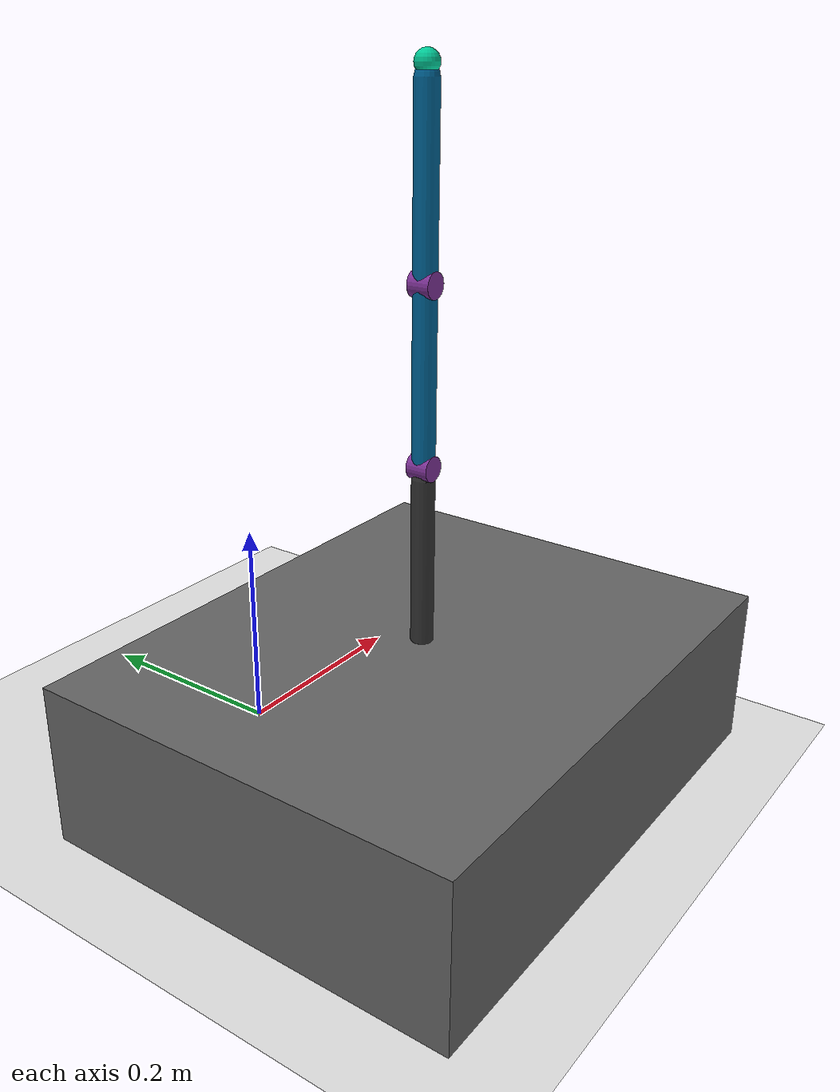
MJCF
<mujoco model="arm">
	<asset>
		<texture builtin="gradient" height="256" rgb1=".9 .9 1." rgb2=".2 .3 .4" type="skybox" width="256"/>
		<texture name="texplane" builtin="checker" height="512" rgb1=".2 .3 .4" rgb2=".1 0.15 0.2" type="2d" width="512"/>
		<material name="floorplane" reflectance="0.5" texrepeat="1 1" texture="texplane" texuniform="true"/>
	</asset>
	<compiler angle="radian" inertiafromgeom="true"/>
	<default>
		<joint armature="1" damping="1" limited="true"/>
		<geom contype="0" friction="1 0.1 0.1" rgba="0.7 0.7 0 1"/>
	</default>
	<option gravity="0 0 -9.81" integrator="RK4" timestep="0.01"/>
	<worldbody>
		<!-- Arena -->
		<camera mode="fixed" name="robotview" pos="1.0 0 0.4" quat="0.653 0.271 0.271 0.653"/>
		<geom conaffinity="0" contype="0" material="floorplane" name="ground" pos="0 0 0" rgba="0.9 0.9 0.9 1" size="1 1 10" type="plane"/>
		<body name="table" pos="0 -0.2 0.075">
			<geom type="box" contype="1" size="0.25 0.2 0.075" rgba="0.4 0.4 0.4 1"/>
		</body>
		<light diffuse=".8 .8 .8" dir="0 -.15 -1" directional="false" pos="1 1 4.0" specular="0.3 0.3 0.3" castshadow="false"/>
    	<light diffuse=".8 .8 .8" dir="0 -.15 -1" directional="false" pos="-3. -3. 4.0" specular="0.3 0.3 0.3" castshadow="false"/>
		<body name="frame" pos="0 0 0">
			<geom conaffinity="2" contype="2" fromto="0 0 0 0 -0.2 0" name="frame0" rgba="0.2 0.2 0.2 1" size=".01" type="capsule"/>
			<geom conaffinity="2" contype="2" fromto="0 -0.2 0 0 -0.2 0.3" name="frame1" rgba="0.2 0.2 0.2 1" size=".01" type="capsule"/>
		</body>
		<!-- Arm -->
		<body name="body0" pos="0 -0.2 .31">
			<geom fromto="0 -0.01 0 0 0.01 0" name="hinge0" rgba="0.5 0.2 0.6 1" size=".011" type="cylinder"/>
			<geom fromto="0 0 0 0 0 0.15" name="link0" rgba="0.0 0.4 0.6 1" size=".01" type="capsule"/>
			<joint axis="0 0 1" limited="true" name="joint0" range="-3.14 3.14" pos="0 0 0" type="hinge" damping="0.1"/>
			<joint axis="0 1 0" limited="true" name="joint1" range="-1.507 1.507" pos="0 0 0" type="hinge" damping="0.1"/>
			<body name="body01" pos="0 0 0.15">
				<geom fromto="0 -0.01 0 0 0.01 0" name="hinge01" rgba="0.5 0.2 0.6 1" size=".011" type="cylinder"/>
				<geom fromto="0 0 0 0 0 0.15" name="link01" rgba="0.0 0.4 0.6 1" size=".01" type="capsule"/>
				<joint axis="0 1 0" limited="true" name="joint2" range="-3 3" pos="0 0 0" type="hinge" damping="0.1"/>
				<body name="fingertip" pos="0 0 0.16">
					<geom conaffinity="1" contype="1" name="fingertip" pos="0 0 0" rgba="0.0 0.8 0.6 1" size=".01" type="sphere"/>
				</body>
			</body>
		</body>
		<!-- Target -->
	</worldbody>
	<contact>
		<exclude body1="body0" body2="target"/>
	</contact>
	<actuator>
		<motor ctrllimited="true" ctrlrange="-2.5 2.5" gear="1" joint="joint0"/>
		<motor ctrllimited="true" ctrlrange="-5.0 5.0" gear="1" joint="joint1"/>
		<motor ctrllimited="true" ctrlrange="-5.0 5.0" gear="1" joint="joint2"/>
	</actuator>
</mujoco>
